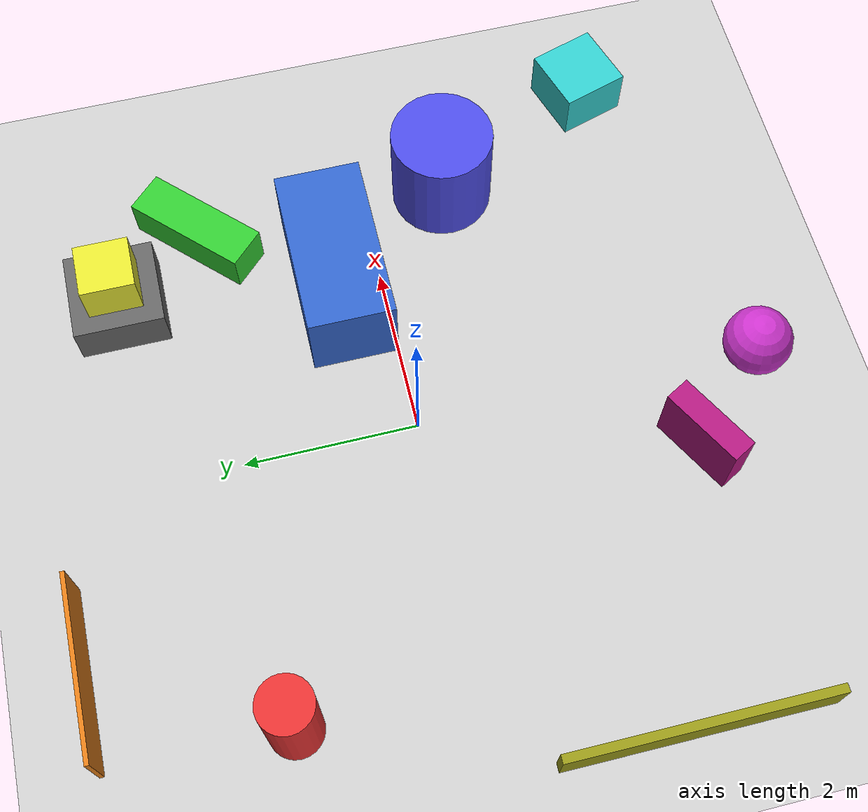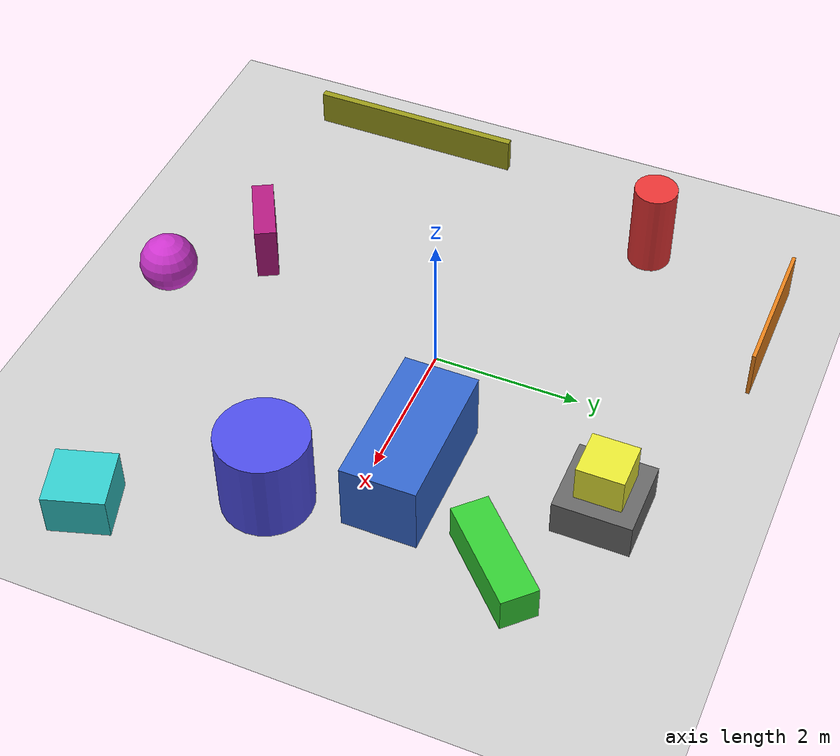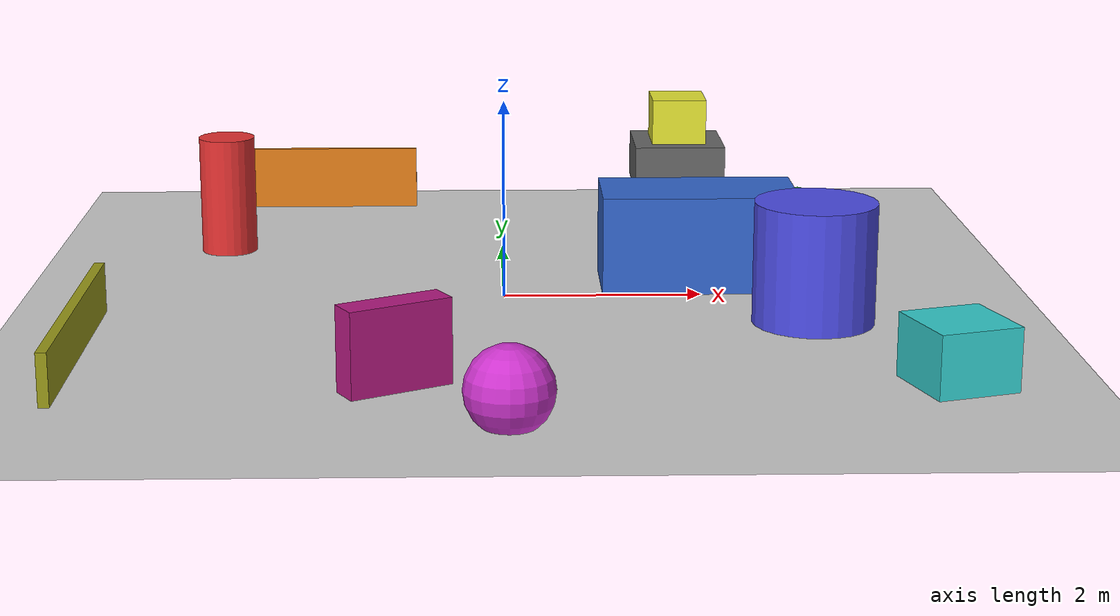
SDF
<?xml version="1.0" ?>
<sdf version="1.9">
  <world name="custom_obstacle_mapping_world">
    <!-- Lighting -->
    <light type="directional" name="sun">
      <cast_shadows>true</cast_shadows>
      <pose>0 0 10 0 0 0</pose>
      <diffuse>0.8 0.8 0.8 1</diffuse>
      <specular>0.2 0.2 0.2 1</specular>
      <attenuation>
        <range>1000</range>
        <constant>0.9</constant>
        <linear>0.01</linear>
        <quadratic>0.001</quadratic>
      </attenuation>
      <direction>-0.5 0.5 -1</direction>
    </light>

    <!-- Ground Plane -->
    <model name="ground_plane">
      <static>true</static>
      <link name="link">
        <collision name="collision">
          <geometry>
            <plane>
              <normal>0 0 1</normal>
              <size>20 20</size>
            </plane>
          </geometry>
          <surface>
            <friction>
              <ode>
                <mu>100</mu>
                <mu2>50</mu2>
              </ode>
            </friction>
          </surface>
        </collision>
        <visual name="visual">
          <geometry>
            <plane>
              <normal>0 0 1</normal>
              <size>20 20</size>
            </plane>
          </geometry>
          <material>
            <ambient>0.8 0.8 0.8 1</ambient>
            <diffuse>0.8 0.8 0.8 1</diffuse>
            <specular>0.8 0.8 0.8 1</specular>
          </material>
        </visual>
      </link>
    </model>

    <!-- 10 UNIQUE OBSTACLES FOR MAPPING -->

    <!-- 1. Large Central Box -->
    <model name="central_box">
      <pose>2 0.5 0.5 0 0 0</pose>
      <static>true</static>
      <link name="link">
        <collision name="collision">
          <geometry>
            <box>
              <size>2 1 1</size>
            </box>
          </geometry>
        </collision>
        <visual name="visual">
          <geometry>
            <box>
              <size>2 1 1</size>
            </box>
          </geometry>
          <material>
            <ambient>0.2 0.4 0.8 1</ambient>
            <diffuse>0.2 0.4 0.8 1</diffuse>
            <specular>0.1 0.1 0.1 1</specular>
          </material>
        </visual>
      </link>
    </model>

    <!-- 2. Tall Cylinder -->
    <model name="tall_cylinder">
      <pose>-3 2 0.5 0 0 0</pose>
      <static>true</static>
      <link name="link">
        <collision name="collision">
          <geometry>
            <cylinder>
              <radius>0.3</radius>
              <length>1.5</length>
            </cylinder>
          </geometry>
        </collision>
        <visual name="visual">
          <geometry>
            <cylinder>
              <radius>0.3</radius>
              <length>1.5</length>
            </cylinder>
          </geometry>
          <material>
            <ambient>0.9 0.2 0.2 1</ambient>
            <diffuse>0.9 0.2 0.2 1</diffuse>
            <specular>0.1 0.1 0.1 1</specular>
          </material>
        </visual>
      </link>
    </model>

    <!-- 3. Short Wide Box -->
    <model name="short_box">
      <pose>3 2 0.25 0 0 0.785</pose>
      <static>true</static>
      <link name="link">
        <collision name="collision">
          <geometry>
            <box>
              <size>1.5 0.5 0.5</size>
            </box>
          </geometry>
        </collision>
        <visual name="visual">
          <geometry>
            <box>
              <size>1.5 0.5 0.5</size>
            </box>
          </geometry>
          <material>
            <ambient>0.2 0.8 0.2 1</ambient>
            <diffuse>0.2 0.8 0.2 1</diffuse>
          </material>
        </visual>
      </link>
    </model>

    <!-- 4. Wall Section -->
    <model name="wall_1">
      <pose>-4 -2 0.25 0 0 1.57</pose>
      <static>true</static>
      <link name="link">
        <collision name="collision">
          <geometry>
            <box>
              <size>3 0.1 0.5</size>
            </box>
          </geometry>
        </collision>
        <visual name="visual">
          <geometry>
            <box>
              <size>3 0.1 0.5</size>
            </box>
          </geometry>
          <material>
            <ambient>0.6 0.6 0.1 1</ambient>
            <diffuse>0.6 0.6 0.1 1</diffuse>
          </material>
        </visual>
      </link>
    </model>

    <!-- 5. Sphere Obstacle -->
    <model name="sphere_obstacle">
      <pose>0 -4 0.3 0 0 0</pose>
      <static>true</static>
      <link name="link">
        <collision name="collision">
          <geometry>
            <sphere>
              <radius>0.4</radius>
            </sphere>
          </geometry>
        </collision>
        <visual name="visual">
          <geometry>
            <sphere>
              <radius>0.4</radius>
            </sphere>
          </geometry>
          <material>
            <ambient>0.8 0.2 0.8 1</ambient>
            <diffuse>0.8 0.2 0.8 1</diffuse>
          </material>
        </visual>
      </link>
    </model>

    <!-- 6. Corner Box -->
    <model name="corner_box">
      <pose>4 -3 0.3 0 0 0.3</pose>
      <static>true</static>
      <link name="link">
        <collision name="collision">
          <geometry>
            <box>
              <size>0.8 0.8 0.6</size>
            </box>
          </geometry>
        </collision>
        <visual name="visual">
          <geometry>
            <box>
              <size>0.8 0.8 0.6</size>
            </box>
          </geometry>
          <material>
            <ambient>0.2 0.8 0.8 1</ambient>
            <diffuse>0.2 0.8 0.8 1</diffuse>
          </material>
        </visual>
      </link>
    </model>

    <!-- 7. Thin Wall -->
    <model name="thin_wall">
      <pose>-2 4 0.35 0 0 0</pose>
      <static>true</static>
      <link name="link">
        <collision name="collision">
          <geometry>
            <box>
              <size>2 0.05 0.7</size>
            </box>
          </geometry>
        </collision>
        <visual name="visual">
          <geometry>
            <box>
              <size>2 0.05 0.7</size>
            </box>
          </geometry>
          <material>
            <ambient>0.9 0.5 0.1 1</ambient>
            <diffuse>0.9 0.5 0.1 1</diffuse>
          </material>
        </visual>
      </link>
    </model>

    <!-- 8. Large Cylinder -->
    <model name="large_cylinder">
      <pose>3 -1 0.6 0 0 0</pose>
      <static>true</static>
      <link name="link">
        <collision name="collision">
          <geometry>
            <cylinder>
              <radius>0.6</radius>
              <length>1.2</length>
            </cylinder>
          </geometry>
        </collision>
        <visual name="visual">
          <geometry>
            <cylinder>
              <radius>0.6</radius>
              <length>1.2</length>
            </cylinder>
          </geometry>
          <material>
            <ambient>0.3 0.3 0.9 1</ambient>
            <diffuse>0.3 0.3 0.9 1</diffuse>
          </material>
        </visual>
      </link>
    </model>

    <!-- 9. Angled Box -->
    <model name="angled_box">
      <pose>-1 -3 0.4 0 0 0.5</pose>
      <static>true</static>
      <link name="link">
        <collision name="collision">
          <geometry>
            <box>
              <size>1 0.3 0.8</size>
            </box>
          </geometry>
        </collision>
        <visual name="visual">
          <geometry>
            <box>
              <size>1 0.3 0.8</size>
            </box>
          </geometry>
          <material>
            <ambient>0.7 0.1 0.5 1</ambient>
            <diffuse>0.7 0.1 0.5 1</diffuse>
          </material>
        </visual>
      </link>
    </model>

    <!-- 10. Double Box Stack -->
    <model name="double_stack">
      <pose>2 3 0.5 0 0 0</pose>
      <static>true</static>
      <link name="lower">
        <pose>0 0 0.25 0 0 0</pose>
        <collision name="collision">
          <geometry>
            <box>
              <size>1 1 0.5</size>
            </box>
          </geometry>
        </collision>
        <visual name="visual">
          <geometry>
            <box>
              <size>1 1 0.5</size>
            </box>
          </geometry>
          <material>
            <ambient>0.4 0.4 0.4 1</ambient>
            <diffuse>0.4 0.4 0.4 1</diffuse>
          </material>
        </visual>
      </link>
      <link name="upper">
        <pose>0 0 0.75 0 0 0</pose>
        <collision name="collision">
          <geometry>
            <box>
              <size>0.6 0.6 0.5</size>
            </box>
          </geometry>
        </collision>
        <visual name="visual">
          <geometry>
            <box>
              <size>0.6 0.6 0.5</size>
            </box>
          </geometry>
          <material>
            <ambient>0.9 0.9 0.2 1</ambient>
            <diffuse>0.9 0.9 0.2 1</diffuse>
          </material>
        </visual>
      </link>
    </model>

    <!-- Physics Engine -->
    <physics name="physics_engine" type="ode">
      <max_step_size>0.01</max_step_size>
      <real_time_factor>1</real_time_factor>
      <real_time_update_rate>1000</real_time_update_rate>
      <ode>
        <solver>
          <type>quick</type>
          <iters>50</iters>
          <sor>1.3</sor>
        </solver>
        <constraints>
          <cfm>0.00001</cfm>
          <erp>0.2</erp>
        </constraints>
      </ode>
    </physics>

    <!-- Scene -->
    <scene>
      <ambient>0.4 0.4 0.4 1</ambient>
      <background>0.7 0.7 0.7 1</background>
      <shadows>true</shadows>
    </scene>

    <!-- Wind (optional, for realism) -->
    <wind>
      <linear_velocity>0.1 0 0</linear_velocity>
    </wind>
  </world>
</sdf>
